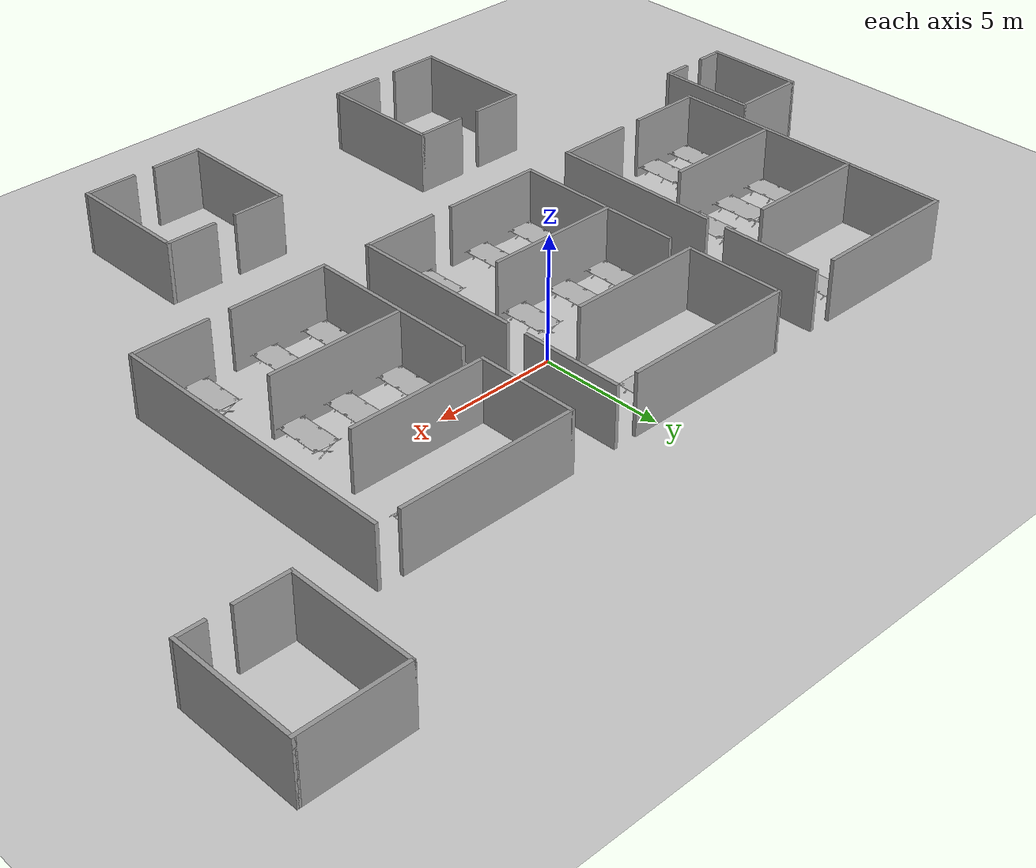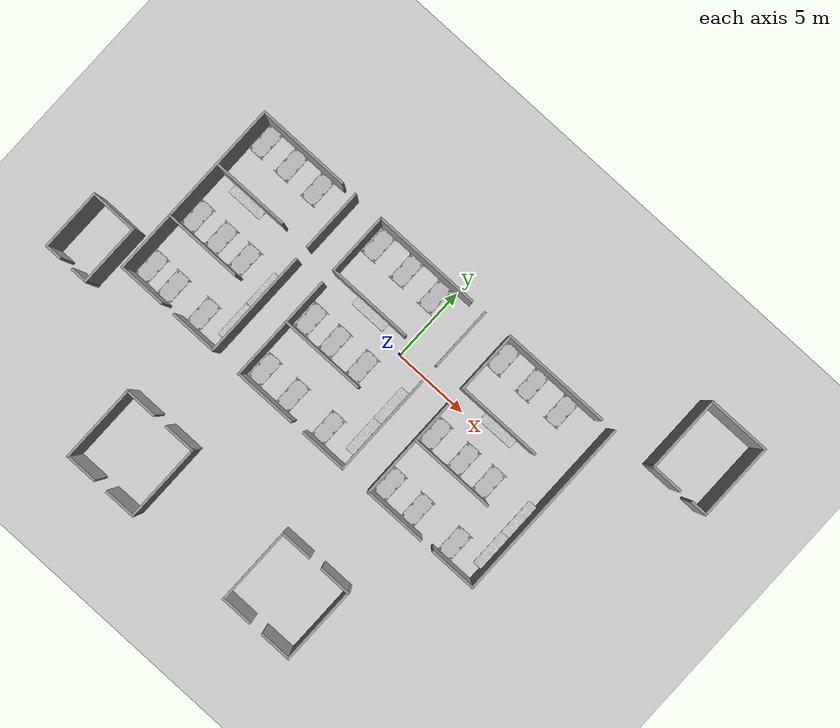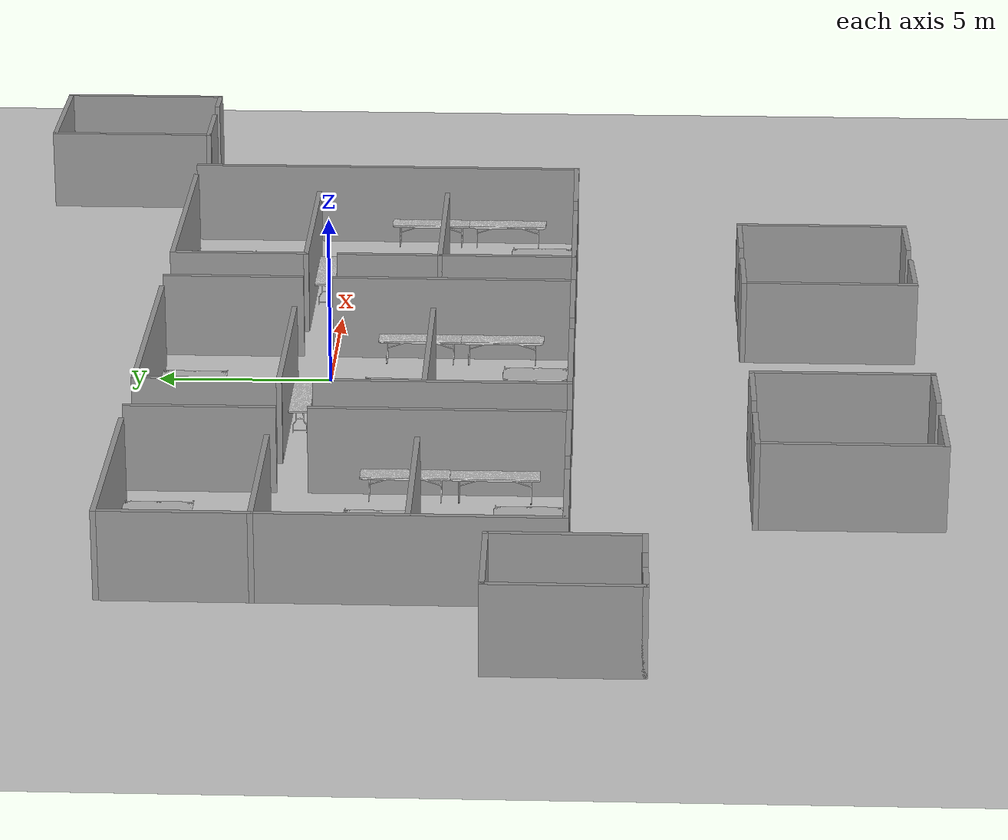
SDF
<sdf version="1.6">
 <world name="default">
  <light name="sun" type="directional">
   <pose>0 0 10 0 -0 0</pose>
   <diffuse>0.8 0.8 0.8 1</diffuse>
   <specular>0.1 0.1 0.1 1</specular>
   <attenuation>
    <range>1000</range>
    <constant>0.9</constant>
    <linear>0.01</linear>
    <quadratic>0.001</quadratic>
   </attenuation>
   <direction>-0.5 0.5 -1</direction>
  </light>
  <model name="ground_plane">
   <static>1</static>
   <link name="link">
    <collision name="collision">
     <geometry><plane><normal>0 0 1</normal><size>100 100</size></plane></geometry>
     <surface><friction><ode><mu>100</mu><mu2>50</mu2></ode></friction></surface>
    </collision>
    <visual name="visual">
     <cast_shadows>0</cast_shadows>
     <geometry><plane><normal>0 0 1</normal><size>100 100</size></plane></geometry>
     <material>
      <script><uri>file://media/materials/scripts/gazebo.material</uri><name>Gazebo/Grey</name></script>
     </material>
    </visual>
   </link>
  </model>
  <gravity>0 0 -9.8</gravity>
  <magnetic_field>6e-06 2.3e-05 -4.2e-05</magnetic_field>
  <atmosphere type="adiabatic"/>
  <physics name="default_physics" default="0" type="ode">
   <max_step_size>0.001</max_step_size>
   <real_time_factor>1</real_time_factor>
   <real_time_update_rate>1000</real_time_update_rate>
  </physics>
  <scene><ambient>0.4 0.4 0.4 1</ambient><background>0.7 0.7 0.7 1</background><shadows>1</shadows></scene>
  <spherical_coordinates>
   <surface_model>EARTH_WGS84</surface_model>
   <latitude_deg>0</latitude_deg>
   <longitude_deg>0</longitude_deg>
   <elevation>0</elevation>
   <heading_deg>0</heading_deg>
  </spherical_coordinates>
  <model name="cot">
   <pose>-14.9811 5.50055 0.1 0 0 -1.5708</pose>
   <static>1</static>
   <link name="body">
    <collision name="body">
     <geometry><mesh><uri>model://cot/meshes/cot.stl</uri><scale>1 1 1</scale></mesh></geometry>
    </collision>
    <visual name="visual">
     <geometry><mesh><uri>model://cot/meshes/cot.dae</uri><scale>1 1 1</scale></mesh></geometry>
    </visual>
   </link>
  </model>
  <model name="cot_clone">
   <pose>-12.9527 5.49728 0.1 0 0 -1.5708</pose>
   <static>1</static>
   <link name="body">
    <collision name="body">
     <geometry><mesh><uri>model://cot/meshes/cot.stl</uri><scale>1 1 1</scale></mesh></geometry>
    </collision>
    <visual name="visual">
     <geometry><mesh><uri>model://cot/meshes/cot.dae</uri><scale>1 1 1</scale></mesh></geometry>
    </visual>
   </link>
  </model>
  <model name="cot_clone_0">
   <pose>-10.8332 5.4804 0.1 0 0 -1.5708</pose>
   <static>1</static>
   <link name="body">
    <collision name="body">
     <geometry><mesh><uri>model://cot/meshes/cot.stl</uri><scale>1 1 1</scale></mesh></geometry>
    </collision>
    <visual name="visual">
     <geometry><mesh><uri>model://cot/meshes/cot.dae</uri><scale>1 1 1</scale></mesh></geometry>
    </visual>
   </link>
  </model>
  <model name="cot_clone_1">
   <pose>-14.9768 -0.452277 0.1 0 0 -1.5708</pose>
   <static>1</static>
   <link name="body">
    <collision name="body">
     <geometry><mesh><uri>model://cot/meshes/cot.stl</uri><scale>1 1 1</scale></mesh></geometry>
    </collision>
    <visual name="visual">
     <geometry><mesh><uri>model://cot/meshes/cot.dae</uri><scale>1 1 1</scale></mesh></geometry>
    </visual>
   </link>
  </model>
  <model name="cot_clone_2">
   <pose>-13.08 -0.439645 0.1 0 0 -1.5708</pose>
   <static>1</static>
   <link name="body">
    <collision name="body">
     <geometry><mesh><uri>model://cot/meshes/cot.stl</uri><scale>1 1 1</scale></mesh></geometry>
    </collision>
    <visual name="visual">
     <geometry><mesh><uri>model://cot/meshes/cot.dae</uri><scale>1 1 1</scale></mesh></geometry>
    </visual>
   </link>
  </model>
  <model name="cot_clone_3">
   <pose>-11.1982 -0.445731 0.1 0 0 -1.5708</pose>
   <static>1</static>
   <link name="body">
    <collision name="body">
     <geometry><mesh><uri>model://cot/meshes/cot.stl</uri><scale>1 1 1</scale></mesh></geometry>
    </collision>
    <visual name="visual">
     <geometry><mesh><uri>model://cot/meshes/cot.dae</uri><scale>1 1 1</scale></mesh></geometry>
    </visual>
   </link>
  </model>
  <model name="cot_clone_4">
   <pose>-14.973 -4.43674 0.1 0 0 -1.5708</pose>
   <static>1</static>
   <link name="body">
    <collision name="body">
     <geometry><mesh><uri>model://cot/meshes/cot.stl</uri><scale>1 1 1</scale></mesh></geometry>
    </collision>
    <visual name="visual">
     <geometry><mesh><uri>model://cot/meshes/cot.dae</uri><scale>1 1 1</scale></mesh></geometry>
    </visual>
   </link>
  </model>
  <model name="cot_clone_5">
   <pose>-13.2224 -4.46277 0.1 0 0 -1.5708</pose>
   <static>1</static>
   <link name="body">
    <collision name="body">
     <geometry><mesh><uri>model://cot/meshes/cot.stl</uri><scale>1 1 1</scale></mesh></geometry>
    </collision>
    <visual name="visual">
     <geometry><mesh><uri>model://cot/meshes/cot.dae</uri><scale>1 1 1</scale></mesh></geometry>
    </visual>
   </link>
  </model>
  <model name="cot_clone_6">
   <pose>-10.8255 -4.45374 0.1 0 0 -1.5708</pose>
   <static>1</static>
   <link name="body">
    <collision name="body">
     <geometry><mesh><uri>model://cot/meshes/cot.stl</uri><scale>1 1 1</scale></mesh></geometry>
    </collision>
    <visual name="visual">
     <geometry><mesh><uri>model://cot/meshes/cot.dae</uri><scale>1 1 1</scale></mesh></geometry>
    </visual>
   </link>
  </model>
  <model name="cot_clone_7">
   <pose>-5.95946 5.46312 0.1 0 0 -1.5708</pose>
   <static>1</static>
   <link name="body">
    <collision name="body">
     <geometry><mesh><uri>model://cot/meshes/cot.stl</uri><scale>1 1 1</scale></mesh></geometry>
    </collision>
    <visual name="visual">
     <geometry><mesh><uri>model://cot/meshes/cot.dae</uri><scale>1 1 1</scale></mesh></geometry>
    </visual>
   </link>
  </model>
  <model name="cot_clone_8">
   <pose>-3.7045 5.46598 0.1 0 0 -1.5708</pose>
   <static>1</static>
   <link name="body">
    <collision name="body">
     <geometry><mesh><uri>model://cot/meshes/cot.stl</uri><scale>1 1 1</scale></mesh></geometry>
    </collision>
    <visual name="visual">
     <geometry><mesh><uri>model://cot/meshes/cot.dae</uri><scale>1 1 1</scale></mesh></geometry>
    </visual>
   </link>
  </model>
  <model name="cot_clone_9">
   <pose>-1.45201 5.44819 0.1 0 0 -1.5708</pose>
   <static>1</static>
   <link name="body">
    <collision name="body">
     <geometry><mesh><uri>model://cot/meshes/cot.stl</uri><scale>1 1 1</scale></mesh></geometry>
    </collision>
    <visual name="visual">
     <geometry><mesh><uri>model://cot/meshes/cot.dae</uri><scale>1 1 1</scale></mesh></geometry>
    </visual>
   </link>
  </model>
  <model name="cot_clone_10">
   <pose>-5.9537 -0.41929 0.1 0 0 -1.5708</pose>
   <static>1</static>
   <link name="body">
    <collision name="body">
     <geometry><mesh><uri>model://cot/meshes/cot.stl</uri><scale>1 1 1</scale></mesh></geometry>
    </collision>
    <visual name="visual">
     <geometry><mesh><uri>model://cot/meshes/cot.dae</uri><scale>1 1 1</scale></mesh></geometry>
    </visual>
   </link>
  </model>
  <model name="cot_clone_11">
   <pose>-4.01982 -0.428355 0.1 0 0 -1.5708</pose>
   <static>1</static>
   <link name="body">
    <collision name="body">
     <geometry><mesh><uri>model://cot/meshes/cot.stl</uri><scale>1 1 1</scale></mesh></geometry>
    </collision>
    <visual name="visual">
     <geometry><mesh><uri>model://cot/meshes/cot.dae</uri><scale>1 1 1</scale></mesh></geometry>
    </visual>
   </link>
  </model>
  <model name="cot_clone_12">
   <pose>-1.82184 -0.443345 0.1 0 0 -1.5708</pose>
   <static>1</static>
   <link name="body">
    <collision name="body">
     <geometry><mesh><uri>model://cot/meshes/cot.stl</uri><scale>1 1 1</scale></mesh></geometry>
    </collision>
    <visual name="visual">
     <geometry><mesh><uri>model://cot/meshes/cot.dae</uri><scale>1 1 1</scale></mesh></geometry>
    </visual>
   </link>
  </model>
  <model name="cot_clone_13">
   <pose>-5.95607 -4.4286 0.1 0 0 -1.5708</pose>
   <static>1</static>
   <link name="body">
    <collision name="body">
     <geometry><mesh><uri>model://cot/meshes/cot.stl</uri><scale>1 1 1</scale></mesh></geometry>
    </collision>
    <visual name="visual">
     <geometry><mesh><uri>model://cot/meshes/cot.dae</uri><scale>1 1 1</scale></mesh></geometry>
    </visual>
   </link>
  </model>
  <model name="cot_clone_14">
   <pose>-3.72043 -4.44398 0.1 0 0 -1.5708</pose>
   <static>1</static>
   <link name="body">
    <collision name="body">
     <geometry><mesh><uri>model://cot/meshes/cot.stl</uri><scale>1 1 1</scale></mesh></geometry>
    </collision>
    <visual name="visual">
     <geometry><mesh><uri>model://cot/meshes/cot.dae</uri><scale>1 1 1</scale></mesh></geometry>
    </visual>
   </link>
  </model>
  <model name="cot_clone_15">
   <pose>-0.888675 -4.42918 0.1 0 0 -1.5708</pose>
   <static>1</static>
   <link name="body">
    <collision name="body">
     <geometry><mesh><uri>model://cot/meshes/cot.stl</uri><scale>1 1 1</scale></mesh></geometry>
    </collision>
    <visual name="visual">
     <geometry><mesh><uri>model://cot/meshes/cot.dae</uri><scale>1 1 1</scale></mesh></geometry>
    </visual>
   </link>
  </model>
  <model name="cot_clone_16">
   <pose>4.0211 5.47722 0.1 0 0 -1.5708</pose>
   <static>1</static>
   <link name="body">
    <collision name="body">
     <geometry><mesh><uri>model://cot/meshes/cot.stl</uri><scale>1 1 1</scale></mesh></geometry>
    </collision>
    <visual name="visual">
     <geometry><mesh><uri>model://cot/meshes/cot.dae</uri><scale>1 1 1</scale></mesh></geometry>
    </visual>
   </link>
  </model>
  <model name="cot_clone_17">
   <pose>6.27241 5.48294 0.1 0 0 -1.5708</pose>
   <static>1</static>
   <link name="body">
    <collision name="body">
     <geometry><mesh><uri>model://cot/meshes/cot.stl</uri><scale>1 1 1</scale></mesh></geometry>
    </collision>
    <visual name="visual">
     <geometry><mesh><uri>model://cot/meshes/cot.dae</uri><scale>1 1 1</scale></mesh></geometry>
    </visual>
   </link>
  </model>
  <model name="cot_clone_18">
   <pose>8.58441 5.49005 0.1 0 0 -1.5708</pose>
   <static>1</static>
   <link name="body">
    <collision name="body">
     <geometry><mesh><uri>model://cot/meshes/cot.stl</uri><scale>1 1 1</scale></mesh></geometry>
    </collision>
    <visual name="visual">
     <geometry><mesh><uri>model://cot/meshes/cot.dae</uri><scale>1 1 1</scale></mesh></geometry>
    </visual>
   </link>
  </model>
  <model name="cot_clone_19">
   <pose>4.02772 -0.451978 0.1 0 0 -1.5708</pose>
   <static>1</static>
   <link name="body">
    <collision name="body">
     <geometry><mesh><uri>model://cot/meshes/cot.stl</uri><scale>1 1 1</scale></mesh></geometry>
    </collision>
    <visual name="visual">
     <geometry><mesh><uri>model://cot/meshes/cot.dae</uri><scale>1 1 1</scale></mesh></geometry>
    </visual>
   </link>
  </model>
  <model name="cot_clone_20">
   <pose>6.26482 -0.44706 0.1 0 0 -1.5708</pose>
   <static>1</static>
   <link name="body">
    <collision name="body">
     <geometry><mesh><uri>model://cot/meshes/cot.stl</uri><scale>1 1 1</scale></mesh></geometry>
    </collision>
    <visual name="visual">
     <geometry><mesh><uri>model://cot/meshes/cot.dae</uri><scale>1 1 1</scale></mesh></geometry>
    </visual>
   </link>
  </model>
  <model name="cot_clone_21">
   <pose>8.24769 -0.446592 0.1 0 0 -1.5708</pose>
   <static>1</static>
   <link name="body">
    <collision name="body">
     <geometry><mesh><uri>model://cot/meshes/cot.stl</uri><scale>1 1 1</scale></mesh></geometry>
    </collision>
    <visual name="visual">
     <geometry><mesh><uri>model://cot/meshes/cot.dae</uri><scale>1 1 1</scale></mesh></geometry>
    </visual>
   </link>
  </model>
  <model name="cot_clone_22">
   <pose>4.03249 -4.42697 0.1 0 0 -1.5708</pose>
   <static>1</static>
   <link name="body">
    <collision name="body">
     <geometry><mesh><uri>model://cot/meshes/cot.stl</uri><scale>1 1 1</scale></mesh></geometry>
    </collision>
    <visual name="visual">
     <geometry><mesh><uri>model://cot/meshes/cot.dae</uri><scale>1 1 1</scale></mesh></geometry>
    </visual>
   </link>
  </model>
  <model name="cot_clone_23">
   <pose>6.23645 -4.44769 0.1 0 0 -1.5708</pose>
   <static>1</static>
   <link name="body">
    <collision name="body">
     <geometry><mesh><uri>model://cot/meshes/cot.stl</uri><scale>1 1 1</scale></mesh></geometry>
    </collision>
    <visual name="visual">
     <geometry><mesh><uri>model://cot/meshes/cot.dae</uri><scale>1 1 1</scale></mesh></geometry>
    </visual>
   </link>
  </model>
  <model name="cot_clone_24">
   <pose>9.17787 -4.4333 0.1 0 0 -1.5708</pose>
   <static>1</static>
   <link name="body">
    <collision name="body">
     <geometry><mesh><uri>model://cot/meshes/cot.stl</uri><scale>1 1 1</scale></mesh></geometry>
    </collision>
    <visual name="visual">
     <geometry><mesh><uri>model://cot/meshes/cot.dae</uri><scale>1 1 1</scale></mesh></geometry>
    </visual>
   </link>
  </model>
  <model name="table_0">
   <pose>-13.8809 0.301038 0 0 -0 0</pose>
   <static>1</static>
   <link name="body">
    <collision name="body">
     <geometry><mesh><uri>model://table/meshes/table.stl</uri><scale>1 1 1</scale></mesh></geometry>
    </collision>
    <visual name="visual">
     <geometry><mesh><uri>model://table/meshes/table.dae</uri><scale>1 1 1</scale></mesh></geometry>
    </visual>
   </link>
  </model>
  <model name="table_0_clone">
   <pose>-4.12342 0.312356 0 0 -0 0</pose>
   <static>1</static>
   <link name="body">
    <collision name="body">
     <geometry><mesh><uri>model://table/meshes/table.stl</uri><scale>1 1 1</scale></mesh></geometry>
    </collision>
    <visual name="visual">
     <geometry><mesh><uri>model://table/meshes/table.dae</uri><scale>1 1 1</scale></mesh></geometry>
    </visual>
   </link>
  </model>
  <model name="table_0_clone_0">
   <pose>5.99211 0.305301 0 0 -0 0</pose>
   <static>1</static>
   <link name="body">
    <collision name="body">
     <geometry><mesh><uri>model://table/meshes/table.stl</uri><scale>1 1 1</scale></mesh></geometry>
    </collision>
    <visual name="visual">
     <geometry><mesh><uri>model://table/meshes/table.dae</uri><scale>1 1 1</scale></mesh></geometry>
    </visual>
   </link>
  </model>
  <model name="table_1">
   <pose>-8.72463 -3.81029 0 0 0 -1.5708</pose>
   <static>1</static>
   <link name="body">
    <collision name="body">
     <geometry><mesh><uri>model://table/meshes/table.stl</uri><scale>1 1 1</scale></mesh></geometry>
    </collision>
    <visual name="visual">
     <geometry><mesh><uri>model://table/meshes/table.dae</uri><scale>1 1 1</scale></mesh></geometry>
    </visual>
   </link>
  </model>
  <model name="table_1_clone">
   <pose>-8.71425 -1.37003 0 0 0 -1.5708</pose>
   <static>1</static>
   <link name="body">
    <collision name="body">
     <geometry><mesh><uri>model://table/meshes/table.stl</uri><scale>1 1 1</scale></mesh></geometry>
    </collision>
    <visual name="visual">
     <geometry><mesh><uri>model://table/meshes/table.dae</uri><scale>1 1 1</scale></mesh></geometry>
    </visual>
   </link>
  </model>
  <model name="table_1_clone_0">
   <pose>1.31419 -3.71854 0 0 0 -1.5708</pose>
   <static>1</static>
   <link name="body">
    <collision name="body">
     <geometry><mesh><uri>model://table/meshes/table.stl</uri><scale>1 1 1</scale></mesh></geometry>
    </collision>
    <visual name="visual">
     <geometry><mesh><uri>model://table/meshes/table.dae</uri><scale>1 1 1</scale></mesh></geometry>
    </visual>
   </link>
  </model>
  <model name="table_1_clone_1">
   <pose>1.31747 -1.3018 0 0 0 -1.5708</pose>
   <static>1</static>
   <link name="body">
    <collision name="body">
     <geometry><mesh><uri>model://table/meshes/table.stl</uri><scale>1 1 1</scale></mesh></geometry>
    </collision>
    <visual name="visual">
     <geometry><mesh><uri>model://table/meshes/table.dae</uri><scale>1 1 1</scale></mesh></geometry>
    </visual>
   </link>
  </model>
  <model name="table_1_clone_2">
   <pose>11.3236 -3.6078 0 0 0 -1.5708</pose>
   <static>1</static>
   <link name="body">
    <collision name="body">
     <geometry><mesh><uri>model://table/meshes/table.stl</uri><scale>1 1 1</scale></mesh></geometry>
    </collision>
    <visual name="visual">
     <geometry><mesh><uri>model://table/meshes/table.dae</uri><scale>1 1 1</scale></mesh></geometry>
    </visual>
   </link>
  </model>
  <model name="table_1_clone_3">
   <pose>11.3257 -1.17916 0 0 0 -1.5708</pose>
   <static>1</static>
   <link name="body">
    <collision name="body">
     <geometry><mesh><uri>model://table/meshes/table.stl</uri><scale>1 1 1</scale></mesh></geometry>
    </collision>
    <visual name="visual">
     <geometry><mesh><uri>model://table/meshes/table.dae</uri><scale>1 1 1</scale></mesh></geometry>
    </visual>
   </link>
  </model>
  <model name="tents_0">
   <pose>0 -3.5 0 0 -0 0</pose>
   <link name="Wall_10">
    <collision name="Wall_10_Collision">
     <geometry><box><size>2.15 0.15 2.5</size></box></geometry>
     <pose>0 0 1.25 0 -0 0</pose>
    </collision>
    <visual name="Wall_10_Visual">
     <pose>0 0 1.25 0 -0 0</pose>
     <geometry><box><size>2.15 0.15 2.5</size></box></geometry>
     <material>
      <script><uri>file://media/materials/scripts/gazebo.material</uri><name>Gazebo/Grey</name></script>
      <ambient>1 1 1 1</ambient>
     </material>
    </visual>
    <pose>-9 -8.5 0 0 -0 3.14159</pose>
   </link>
   <link name="Wall_11">
    <collision name="Wall_11_Collision">
     <geometry><box><size>5.15 0.15 2.5</size></box></geometry>
     <pose>0 0 1.25 0 -0 0</pose>
    </collision>
    <visual name="Wall_11_Visual">
     <pose>0 0 1.25 0 -0 0</pose>
     <geometry><box><size>5.15 0.15 2.5</size></box></geometry>
     <material>
      <script><uri>file://media/materials/scripts/gazebo.material</uri><name>Gazebo/Grey</name></script>
      <ambient>1 1 1 1</ambient>
     </material>
    </visual>
    <pose>-10 -11 0 0 0 -1.5708</pose>
   </link>
   <link name="Wall_12">
    <collision name="Wall_12_Collision">
     <geometry><box><size>2.15 0.15 2.5</size></box></geometry>
     <pose>0 0 1.25 0 -0 0</pose>
    </collision>
    <visual name="Wall_12_Visual">
     <pose>0 0 1.25 0 -0 0</pose>
     <geometry><box><size>2.15 0.15 2.5</size></box></geometry>
     <material>
      <script><uri>file://media/materials/scripts/gazebo.material</uri><name>Gazebo/Grey</name></script>
      <ambient>1 1 1 1</ambient>
     </material>
    </visual>
    <pose>-9 -13.5 0 0 -0 0</pose>
   </link>
   <link name="Wall_14">
    <collision name="Wall_14_Collision">
     <geometry><box><size>2.15 0.15 2.5</size></box></geometry>
     <pose>0 0 1.25 0 -0 0</pose>
    </collision>
    <visual name="Wall_14_Visual">
     <pose>0 0 1.25 0 -0 0</pose>
     <geometry><box><size>2.15 0.15 2.5</size></box></geometry>
     <material>
      <script><uri>file://media/materials/scripts/gazebo.material</uri><name>Gazebo/Grey</name></script>
      <ambient>1 1 1 1</ambient>
     </material>
    </visual>
    <pose>-6 -8.5 0 0 -0 0</pose>
   </link>
   <link name="Wall_15">
    <collision name="Wall_15_Collision">
     <geometry><box><size>5.15 0.15 2.5</size></box></geometry>
     <pose>0 0 1.25 0 -0 0</pose>
    </collision>
    <visual name="Wall_15_Visual">
     <pose>0 0 1.25 0 -0 0</pose>
     <geometry><box><size>5.15 0.15 2.5</size></box></geometry>
     <material>
      <script><uri>file://media/materials/scripts/gazebo.material</uri><name>Gazebo/Grey</name></script>
      <ambient>1 1 1 1</ambient>
     </material>
    </visual>
    <pose>-5 -11 0 0 0 -1.5708</pose>
   </link>
   <link name="Wall_16">
    <collision name="Wall_16_Collision">
     <geometry><box><size>2.15 0.15 2.5</size></box></geometry>
     <pose>0 0 1.25 0 -0 0</pose>
    </collision>
    <visual name="Wall_16_Visual">
     <pose>0 0 1.25 0 -0 0</pose>
     <geometry><box><size>2.15 0.15 2.5</size></box></geometry>
     <material>
      <script><uri>file://media/materials/scripts/gazebo.material</uri><name>Gazebo/Grey</name></script>
      <ambient>1 1 1 1</ambient>
     </material>
    </visual>
    <pose>-6 -13.5 0 0 -0 3.14159</pose>
   </link>
   <link name="Wall_2">
    <collision name="Wall_2_Collision">
     <geometry><box><size>2.15 0.15 2.5</size></box></geometry>
     <pose>0 0 1.25 0 -0 0</pose>
    </collision>
    <visual name="Wall_2_Visual">
     <pose>0 0 1.25 0 -0 0</pose>
     <geometry><box><size>2.15 0.15 2.5</size></box></geometry>
     <material>
      <script><uri>file://media/materials/scripts/gazebo.material</uri><name>Gazebo/Grey</name></script>
      <ambient>1 1 1 1</ambient>
     </material>
    </visual>
    <pose>16 8.5 0 0 -0 3.14159</pose>
   </link>
   <link name="Wall_20">
    <collision name="Wall_20_Collision">
     <geometry><box><size>2.15 0.15 2.5</size></box></geometry>
     <pose>0 0 1.25 0 -0 0</pose>
    </collision>
    <visual name="Wall_20_Visual">
     <pose>0 0 1.25 0 -0 0</pose>
     <geometry><box><size>2.15 0.15 2.5</size></box></geometry>
     <material>
      <script><uri>file://media/materials/scripts/gazebo.material</uri><name>Gazebo/Grey</name></script>
      <ambient>1 1 1 1</ambient>
     </material>
    </visual>
    <pose>3 -8.5 0 0 -0 3.14159</pose>
   </link>
   <link name="Wall_21">
    <collision name="Wall_21_Collision">
     <geometry><box><size>5.15 0.15 2.5</size></box></geometry>
     <pose>0 0 1.25 0 -0 0</pose>
    </collision>
    <visual name="Wall_21_Visual">
     <pose>0 0 1.25 0 -0 0</pose>
     <geometry><box><size>5.15 0.15 2.5</size></box></geometry>
     <material>
      <script><uri>file://media/materials/scripts/gazebo.material</uri><name>Gazebo/Grey</name></script>
      <ambient>1 1 1 1</ambient>
     </material>
    </visual>
    <pose>2 -11 0 0 0 -1.5708</pose>
   </link>
   <link name="Wall_22">
    <collision name="Wall_22_Collision">
     <geometry><box><size>2.15 0.15 2.5</size></box></geometry>
     <pose>0 0 1.25 0 -0 0</pose>
    </collision>
    <visual name="Wall_22_Visual">
     <pose>0 0 1.25 0 -0 0</pose>
     <geometry><box><size>2.15 0.15 2.5</size></box></geometry>
     <material>
      <script><uri>file://media/materials/scripts/gazebo.material</uri><name>Gazebo/Grey</name></script>
      <ambient>1 1 1 1</ambient>
     </material>
    </visual>
    <pose>3 -13.5 0 0 -0 0</pose>
   </link>
   <link name="Wall_24">
    <collision name="Wall_24_Collision">
     <geometry><box><size>2.15 0.15 2.5</size></box></geometry>
     <pose>0 0 1.25 0 -0 0</pose>
    </collision>
    <visual name="Wall_24_Visual">
     <pose>0 0 1.25 0 -0 0</pose>
     <geometry><box><size>2.15 0.15 2.5</size></box></geometry>
     <material>
      <script><uri>file://media/materials/scripts/gazebo.material</uri><name>Gazebo/Grey</name></script>
      <ambient>1 1 1 1</ambient>
     </material>
    </visual>
    <pose>6 -8.5 0 0 -0 0</pose>
   </link>
   <link name="Wall_25">
    <collision name="Wall_25_Collision">
     <geometry><box><size>5.15 0.15 2.5</size></box></geometry>
     <pose>0 0 1.25 0 -0 0</pose>
    </collision>
    <visual name="Wall_25_Visual">
     <pose>0 0 1.25 0 -0 0</pose>
     <geometry><box><size>5.15 0.15 2.5</size></box></geometry>
     <material>
      <script><uri>file://media/materials/scripts/gazebo.material</uri><name>Gazebo/Grey</name></script>
      <ambient>1 1 1 1</ambient>
     </material>
    </visual>
    <pose>7 -11 0 0 0 -1.5708</pose>
   </link>
   <link name="Wall_26">
    <collision name="Wall_26_Collision">
     <geometry><box><size>2.15 0.15 2.5</size></box></geometry>
     <pose>0 0 1.25 0 -0 0</pose>
    </collision>
    <visual name="Wall_26_Visual">
     <pose>0 0 1.25 0 -0 0</pose>
     <geometry><box><size>2.15 0.15 2.5</size></box></geometry>
     <material>
      <script><uri>file://media/materials/scripts/gazebo.material</uri><name>Gazebo/Grey</name></script>
      <ambient>1 1 1 1</ambient>
     </material>
    </visual>
    <pose>6 -13.5 0 0 -0 3.14159</pose>
   </link>
   <link name="Wall_3">
    <collision name="Wall_3_Collision">
     <geometry><box><size>5.15 0.15 2.5</size></box></geometry>
     <pose>0 0 1.25 0 -0 0</pose>
    </collision>
    <visual name="Wall_3_Visual">
     <pose>0 0 1.25 0 -0 0</pose>
     <geometry><box><size>5.15 0.15 2.5</size></box></geometry>
     <material>
      <script><uri>file://media/materials/scripts/gazebo.material</uri><name>Gazebo/Grey</name></script>
      <ambient>1 1 1 1</ambient>
     </material>
    </visual>
    <pose>15 11 0 0 -0 1.5708</pose>
   </link>
   <link name="Wall_33">
    <collision name="Wall_33_Collision">
     <geometry><box><size>1.15 0.15 2.5</size></box></geometry>
     <pose>0 0 1.25 0 -0 0</pose>
    </collision>
    <visual name="Wall_33_Visual">
     <pose>0 0 1.25 0 -0 0</pose>
     <geometry><box><size>1.15 0.15 2.5</size></box></geometry>
     <material>
      <script><uri>file://media/materials/scripts/gazebo.material</uri><name>Gazebo/Grey</name></script>
      <ambient>1 1 1 1</ambient>
     </material>
    </visual>
    <pose>-18.5 -5.5 0 0 -0 3.14159</pose>
   </link>
   <link name="Wall_34">
    <collision name="Wall_34_Collision">
     <geometry><box><size>4.15 0.15 2.5</size></box></geometry>
     <pose>0 0 1.25 0 -0 0</pose>
    </collision>
    <visual name="Wall_34_Visual">
     <pose>0 0 1.25 0 -0 0</pose>
     <geometry><box><size>4.15 0.15 2.5</size></box></geometry>
     <material>
      <script><uri>file://media/materials/scripts/gazebo.material</uri><name>Gazebo/Grey</name></script>
      <ambient>1 1 1 1</ambient>
     </material>
    </visual>
    <pose>-19 -3.5 0 0 -0 1.5708</pose>
   </link>
   <link name="Wall_35">
    <collision name="Wall_35_Collision">
     <geometry><box><size>3.15 0.15 2.5</size></box></geometry>
     <pose>0 0 1.25 0 -0 0</pose>
    </collision>
    <visual name="Wall_35_Visual">
     <pose>0 0 1.25 0 -0 0</pose>
     <geometry><box><size>3.15 0.15 2.5</size></box></geometry>
     <material>
      <script><uri>file://media/materials/scripts/gazebo.material</uri><name>Gazebo/Grey</name></script>
      <ambient>1 1 1 1</ambient>
     </material>
    </visual>
    <pose>-17.5 -1.5 0 0 -0 0</pose>
   </link>
   <link name="Wall_36">
    <collision name="Wall_36_Collision">
     <geometry><box><size>4.15 0.15 2.5</size></box></geometry>
     <pose>0 0 1.25 0 -0 0</pose>
    </collision>
    <visual name="Wall_36_Visual">
     <pose>0 0 1.25 0 -0 0</pose>
     <geometry><box><size>4.15 0.15 2.5</size></box></geometry>
     <material>
      <script><uri>file://media/materials/scripts/gazebo.material</uri><name>Gazebo/Grey</name></script>
      <ambient>1 1 1 1</ambient>
     </material>
    </visual>
    <pose>-16 -3.5 0 0 0 -1.5708</pose>
   </link>
   <link name="Wall_37">
    <collision name="Wall_37_Collision">
     <geometry><box><size>1.15 0.15 2.5</size></box></geometry>
     <pose>0 0 1.25 0 -0 0</pose>
    </collision>
    <visual name="Wall_37_Visual">
     <pose>0 0 1.25 0 -0 0</pose>
     <geometry><box><size>1.15 0.15 2.5</size></box></geometry>
     <material>
      <script><uri>file://media/materials/scripts/gazebo.material</uri><name>Gazebo/Grey</name></script>
      <ambient>1 1 1 1</ambient>
     </material>
    </visual>
    <pose>-16.5 -5.5 0 0 -0 3.14159</pose>
   </link>
   <link name="Wall_4">
    <collision name="Wall_4_Collision">
     <geometry><box><size>4.15 0.15 2.5</size></box></geometry>
     <pose>0 0 1.25 0 -0 0</pose>
    </collision>
    <visual name="Wall_4_Visual">
     <pose>0 0 1.25 0 -0 0</pose>
     <geometry><box><size>4.15 0.15 2.5</size></box></geometry>
     <material>
      <script><uri>file://media/materials/scripts/gazebo.material</uri><name>Gazebo/Grey</name></script>
      <ambient>1 1 1 1</ambient>
     </material>
    </visual>
    <pose>17 13.5 0 0 -0 0</pose>
   </link>
   <link name="Wall_42">
    <collision name="Wall_42_Collision">
     <geometry><box><size>6.15 0.15 2.5</size></box></geometry>
     <pose>0 0 1.25 0 -0 0</pose>
    </collision>
    <visual name="Wall_42_Visual">
     <pose>0 0 1.25 0 -0 0</pose>
     <geometry><box><size>6.15 0.15 2.5</size></box></geometry>
     <material>
      <script><uri>file://media/materials/scripts/gazebo.material</uri><name>Gazebo/Grey</name></script>
      <ambient>1 1 1 1</ambient>
     </material>
    </visual>
    <pose>-12 8.5 0 0 -0 3.14159</pose>
   </link>
   <link name="Wall_43">
    <collision name="Wall_43_Collision">
     <geometry><box><size>12.15 0.15 2.5</size></box></geometry>
     <pose>0 0 1.25 0 -0 0</pose>
    </collision>
    <visual name="Wall_43_Visual">
     <pose>0 0 1.25 0 -0 0</pose>
     <geometry><box><size>12.15 0.15 2.5</size></box></geometry>
     <material>
      <script><uri>file://media/materials/scripts/gazebo.material</uri><name>Gazebo/Grey</name></script>
      <ambient>1 1 1 1</ambient>
     </material>
    </visual>
    <pose>-15 2.5 0 0 0 -1.5708</pose>
   </link>
   <link name="Wall_44">
    <collision name="Wall_44_Collision">
     <geometry><box><size>3.15 0.15 2.5</size></box></geometry>
     <pose>0 0 1.25 0 -0 0</pose>
    </collision>
    <visual name="Wall_44_Visual">
     <pose>0 0 1.25 0 -0 0</pose>
     <geometry><box><size>3.15 0.15 2.5</size></box></geometry>
     <material>
      <script><uri>file://media/materials/scripts/gazebo.material</uri><name>Gazebo/Grey</name></script>
      <ambient>1 1 1 1</ambient>
     </material>
    </visual>
    <pose>-13.5 -3.5 0 0 -0 0</pose>
   </link>
   <link name="Wall_46">
    <collision name="Wall_46_Collision">
     <geometry><box><size>3.15 0.15 2.5</size></box></geometry>
     <pose>0 0 1.25 0 -0 0</pose>
    </collision>
    <visual name="Wall_46_Visual">
     <pose>0 0 1.25 0 -0 0</pose>
     <geometry><box><size>3.15 0.15 2.5</size></box></geometry>
     <material>
      <script><uri>file://media/materials/scripts/gazebo.material</uri><name>Gazebo/Grey</name></script>
      <ambient>1 1 1 1</ambient>
     </material>
    </visual>
    <pose>-9.5 -3.5 0 0 -0 0</pose>
   </link>
   <link name="Wall_47">
    <collision name="Wall_47_Collision">
     <geometry><box><size>7.15 0.15 2.5</size></box></geometry>
     <pose>0 0 1.25 0 -0 0</pose>
    </collision>
    <visual name="Wall_47_Visual">
     <pose>0 0 1.25 0 -0 0</pose>
     <geometry><box><size>7.15 0.15 2.5</size></box></geometry>
     <material>
      <script><uri>file://media/materials/scripts/gazebo.material</uri><name>Gazebo/Grey</name></script>
      <ambient>1 1 1 1</ambient>
     </material>
    </visual>
    <pose>-8 0 0 0 -0 1.5708</pose>
   </link>
   <link name="Wall_49">
    <collision name="Wall_49_Collision">
     <geometry><box><size>4.15 0.15 2.5</size></box></geometry>
     <pose>0 0 1.25 0 -0 0</pose>
    </collision>
    <visual name="Wall_49_Visual">
     <pose>0 0 1.25 0 -0 0</pose>
     <geometry><box><size>4.15 0.15 2.5</size></box></geometry>
     <material>
      <script><uri>file://media/materials/scripts/gazebo.material</uri><name>Gazebo/Grey</name></script>
      <ambient>1 1 1 1</ambient>
     </material>
    </visual>
    <pose>-8 6.5 0 0 0 -1.5708</pose>
   </link>
   <link name="Wall_5">
    <collision name="Wall_5_Collision">
     <geometry><box><size>5.15 0.15 2.5</size></box></geometry>
     <pose>0 0 1.25 0 -0 0</pose>
    </collision>
    <visual name="Wall_5_Visual">
     <pose>0 0 1.25 0 -0 0</pose>
     <geometry><box><size>5.15 0.15 2.5</size></box></geometry>
     <material>
      <script><uri>file://media/materials/scripts/gazebo.material</uri><name>Gazebo/Grey</name></script>
      <ambient>1 1 1 1</ambient>
     </material>
    </visual>
    <pose>19 11 0 0 0 -1.5708</pose>
   </link>
   <link name="Wall_51">
    <collision name="Wall_51_Collision">
     <geometry><box><size>5.15 0.15 2.5</size></box></geometry>
     <pose>0 0 1.25 0 -0 0</pose>
    </collision>
    <visual name="Wall_51_Visual">
     <pose>0 0 1.25 0 -0 0</pose>
     <geometry><box><size>5.15 0.15 2.5</size></box></geometry>
     <material>
      <script><uri>file://media/materials/scripts/gazebo.material</uri><name>Gazebo/Grey</name></script>
      <ambient>1 1 1 1</ambient>
     </material>
    </visual>
    <pose>-12.5 4.5 0 0 -0 0</pose>
   </link>
   <link name="Wall_53">
    <collision name="Wall_53_Collision">
     <geometry><box><size>5.15 0.15 2.5</size></box></geometry>
     <pose>0 0 1.25 0 -0 0</pose>
    </collision>
    <visual name="Wall_53_Visual">
     <pose>0 0 1.25 0 -0 0</pose>
     <geometry><box><size>5.15 0.15 2.5</size></box></geometry>
     <material>
      <script><uri>file://media/materials/scripts/gazebo.material</uri><name>Gazebo/Grey</name></script>
      <ambient>1 1 1 1</ambient>
     </material>
    </visual>
    <pose>-12.5 0.5 0 0 -0 0</pose>
   </link>
   <link name="Wall_6">
    <collision name="Wall_6_Collision">
     <geometry><box><size>1.15 0.15 2.5</size></box></geometry>
     <pose>0 0 1.25 0 -0 0</pose>
    </collision>
    <visual name="Wall_6_Visual">
     <pose>0 0 1.25 0 -0 0</pose>
     <geometry><box><size>1.15 0.15 2.5</size></box></geometry>
     <material>
      <script><uri>file://media/materials/scripts/gazebo.material</uri><name>Gazebo/Grey</name></script>
      <ambient>1 1 1 1</ambient>
     </material>
    </visual>
    <pose>18.5 8.5 0 0 -0 3.14159</pose>
   </link>
   <link name="Wall_65">
    <collision name="Wall_65_Collision">
     <geometry><box><size>4.15 0.15 2.5</size></box></geometry>
     <pose>0 0 1.25 0 -0 0</pose>
    </collision>
    <visual name="Wall_65_Visual">
     <pose>0 0 1.25 0 -0 0</pose>
     <geometry><box><size>4.15 0.15 2.5</size></box></geometry>
     <material>
      <script><uri>file://media/materials/scripts/gazebo.material</uri><name>Gazebo/Grey</name></script>
      <ambient>1 1 1 1</ambient>
     </material>
    </visual>
    <pose>-6 6.5 0 0 -0 1.5708</pose>
   </link>
   <link name="Wall_69">
    <collision name="Wall_69_Collision">
     <geometry><box><size>7.15 0.15 2.5</size></box></geometry>
     <pose>0 0 1.25 0 -0 0</pose>
    </collision>
    <visual name="Wall_69_Visual">
     <pose>0 0 1.25 0 -0 0</pose>
     <geometry><box><size>7.15 0.15 2.5</size></box></geometry>
     <material>
      <script><uri>file://media/materials/scripts/gazebo.material</uri><name>Gazebo/Grey</name></script>
      <ambient>1 1 1 1</ambient>
     </material>
    </visual>
    <pose>2 0 0 0 0 -1.5708</pose>
   </link>
   <link name="Wall_70">
    <collision name="Wall_70_Collision">
     <geometry><box><size>3.15 0.15 2.5</size></box></geometry>
     <pose>0 0 1.25 0 -0 0</pose>
    </collision>
    <visual name="Wall_70_Visual">
     <pose>0 0 1.25 0 -0 0</pose>
     <geometry><box><size>3.15 0.15 2.5</size></box></geometry>
     <material>
      <script><uri>file://media/materials/scripts/gazebo.material</uri><name>Gazebo/Grey</name></script>
      <ambient>1 1 1 1</ambient>
     </material>
    </visual>
    <pose>0.5 -3.5 0 0 -0 3.14159</pose>
   </link>
   <link name="Wall_72">
    <collision name="Wall_72_Collision">
     <geometry><box><size>4.15 0.15 2.5</size></box></geometry>
     <pose>0 0 1.25 0 -0 0</pose>
    </collision>
    <visual name="Wall_72_Visual">
     <pose>0 0 1.25 0 -0 0</pose>
     <geometry><box><size>4.15 0.15 2.5</size></box></geometry>
     <material>
      <script><uri>file://media/materials/scripts/gazebo.material</uri><name>Gazebo/Grey</name></script>
      <ambient>1 1 1 1</ambient>
     </material>
    </visual>
    <pose>-4 -3.5 0 0 -0 3.14159</pose>
   </link>
   <link name="Wall_73">
    <collision name="Wall_73_Collision">
     <geometry><box><size>7.15 0.15 2.5</size></box></geometry>
     <pose>0 0 1.25 0 -0 0</pose>
    </collision>
    <visual name="Wall_73_Visual">
     <pose>0 0 1.25 0 -0 0</pose>
     <geometry><box><size>7.15 0.15 2.5</size></box></geometry>
     <material>
      <script><uri>file://media/materials/scripts/gazebo.material</uri><name>Gazebo/Grey</name></script>
      <ambient>1 1 1 1</ambient>
     </material>
    </visual>
    <pose>-6 0 0 0 -0 1.5708</pose>
   </link>
   <link name="Wall_75">
    <collision name="Wall_75_Collision">
     <geometry><box><size>7.15 0.15 2.5</size></box></geometry>
     <pose>0 0 1.25 0 -0 0</pose>
    </collision>
    <visual name="Wall_75_Visual">
     <pose>0 0 1.25 0 -0 0</pose>
     <geometry><box><size>7.15 0.15 2.5</size></box></geometry>
     <material>
      <script><uri>file://media/materials/scripts/gazebo.material</uri><name>Gazebo/Grey</name></script>
      <ambient>1 1 1 1</ambient>
     </material>
    </visual>
    <pose>-2.5 8.5 0 0 -0 0</pose>
   </link>
   <link name="Wall_77">
    <collision name="Wall_77_Collision">
     <geometry><box><size>4.15 0.15 2.5</size></box></geometry>
     <pose>0 0 1.25 0 -0 0</pose>
    </collision>
    <visual name="Wall_77_Visual">
     <pose>0 0 1.25 0 -0 0</pose>
     <geometry><box><size>4.15 0.15 2.5</size></box></geometry>
     <material>
      <script><uri>file://media/materials/scripts/gazebo.material</uri><name>Gazebo/Grey</name></script>
      <ambient>1 1 1 1</ambient>
     </material>
    </visual>
    <pose>2 6.5 0 0 0 -1.5708</pose>
   </link>
   <link name="Wall_79">
    <collision name="Wall_79_Collision">
     <geometry><box><size>5.65 0.15 2.5</size></box></geometry>
     <pose>0 0 1.25 0 -0 0</pose>
    </collision>
    <visual name="Wall_79_Visual">
     <pose>0 0 1.25 0 -0 0</pose>
     <geometry><box><size>5.65 0.15 2.5</size></box></geometry>
     <material>
      <script><uri>file://media/materials/scripts/gazebo.material</uri><name>Gazebo/Grey</name></script>
      <ambient>1 1 1 1</ambient>
     </material>
    </visual>
    <pose>-3.25 4.5 0 0 -0 0</pose>
   </link>
   <link name="Wall_81">
    <collision name="Wall_81_Collision">
     <geometry><box><size>5.65 0.15 2.5</size></box></geometry>
     <pose>0 0 1.25 0 -0 0</pose>
    </collision>
    <visual name="Wall_81_Visual">
     <pose>0 0 1.25 0 -0 0</pose>
     <geometry><box><size>5.65 0.15 2.5</size></box></geometry>
     <material>
      <script><uri>file://media/materials/scripts/gazebo.material</uri><name>Gazebo/Grey</name></script>
      <ambient>1 1 1 1</ambient>
     </material>
    </visual>
    <pose>-3.25 0.5 0 0 -0 0</pose>
   </link>
   <link name="Wall_83">
    <collision name="Wall_83_Collision">
     <geometry><box><size>4.15 0.15 2.5</size></box></geometry>
     <pose>0 0 1.25 0 -0 0</pose>
    </collision>
    <visual name="Wall_83_Visual">
     <pose>0 0 1.25 0 -0 0</pose>
     <geometry><box><size>4.15 0.15 2.5</size></box></geometry>
     <material>
      <script><uri>file://media/materials/scripts/gazebo.material</uri><name>Gazebo/Grey</name></script>
      <ambient>1 1 1 1</ambient>
     </material>
    </visual>
    <pose>4 6.5 0 0 -0 1.5708</pose>
   </link>
   <link name="Wall_84">
    <collision name="Wall_84_Collision">
     <geometry><box><size>7.15 0.15 2.5</size></box></geometry>
     <pose>0 0 1.25 0 -0 0</pose>
    </collision>
    <visual name="Wall_84_Visual">
     <pose>0 0 1.25 0 -0 0</pose>
     <geometry><box><size>7.15 0.15 2.5</size></box></geometry>
     <material>
      <script><uri>file://media/materials/scripts/gazebo.material</uri><name>Gazebo/Grey</name></script>
      <ambient>1 1 1 1</ambient>
     </material>
    </visual>
    <pose>7.5 8.5 0 0 -0 0</pose>
   </link>
   <link name="Wall_86">
    <collision name="Wall_86_Collision">
     <geometry><box><size>12.15 0.15 2.5</size></box></geometry>
     <pose>0 0 1.25 0 -0 0</pose>
    </collision>
    <visual name="Wall_86_Visual">
     <pose>0 0 1.25 0 -0 0</pose>
     <geometry><box><size>12.15 0.15 2.5</size></box></geometry>
     <material>
      <script><uri>file://media/materials/scripts/gazebo.material</uri><name>Gazebo/Grey</name></script>
      <ambient>1 1 1 1</ambient>
     </material>
    </visual>
    <pose>12 2.5 0 0 0 -1.5708</pose>
   </link>
   <link name="Wall_87">
    <collision name="Wall_87_Collision">
     <geometry><box><size>3.15 0.15 2.5</size></box></geometry>
     <pose>0 0 1.25 0 -0 0</pose>
    </collision>
    <visual name="Wall_87_Visual">
     <pose>0 0 1.25 0 -0 0</pose>
     <geometry><box><size>3.15 0.15 2.5</size></box></geometry>
     <material>
      <script><uri>file://media/materials/scripts/gazebo.material</uri><name>Gazebo/Grey</name></script>
      <ambient>1 1 1 1</ambient>
     </material>
    </visual>
    <pose>10.5 -3.5 0 0 -0 3.14159</pose>
   </link>
   <link name="Wall_89">
    <collision name="Wall_89_Collision">
     <geometry><box><size>4.15 0.15 2.5</size></box></geometry>
     <pose>0 0 1.25 0 -0 0</pose>
    </collision>
    <visual name="Wall_89_Visual">
     <pose>0 0 1.25 0 -0 0</pose>
     <geometry><box><size>4.15 0.15 2.5</size></box></geometry>
     <material>
      <script><uri>file://media/materials/scripts/gazebo.material</uri><name>Gazebo/Grey</name></script>
      <ambient>1 1 1 1</ambient>
     </material>
    </visual>
    <pose>6 -3.5 0 0 -0 3.14159</pose>
   </link>
   <link name="Wall_90">
    <collision name="Wall_90_Collision">
     <geometry><box><size>7.15 0.15 2.5</size></box></geometry>
     <pose>0 0 1.25 0 -0 0</pose>
    </collision>
    <visual name="Wall_90_Visual">
     <pose>0 0 1.25 0 -0 0</pose>
     <geometry><box><size>7.15 0.15 2.5</size></box></geometry>
     <material>
      <script><uri>file://media/materials/scripts/gazebo.material</uri><name>Gazebo/Grey</name></script>
      <ambient>1 1 1 1</ambient>
     </material>
    </visual>
    <pose>4 0 0 0 -0 1.5708</pose>
   </link>
   <link name="Wall_92">
    <collision name="Wall_92_Collision">
     <geometry><box><size>5.65 0.15 2.5</size></box></geometry>
     <pose>0 0 1.25 0 -0 0</pose>
    </collision>
    <visual name="Wall_92_Visual">
     <pose>0 0 1.25 0 -0 0</pose>
     <geometry><box><size>5.65 0.15 2.5</size></box></geometry>
     <material>
      <script><uri>file://media/materials/scripts/gazebo.material</uri><name>Gazebo/Grey</name></script>
      <ambient>1 1 1 1</ambient>
     </material>
    </visual>
    <pose>6.75 4.5 0 0 -0 0</pose>
   </link>
   <link name="Wall_94">
    <collision name="Wall_94_Collision">
     <geometry><box><size>5.65 0.15 2.5</size></box></geometry>
     <pose>0 0 1.25 0 -0 0</pose>
    </collision>
    <visual name="Wall_94_Visual">
     <pose>0 0 1.25 0 -0 0</pose>
     <geometry><box><size>5.65 0.15 2.5</size></box></geometry>
     <material>
      <script><uri>file://media/materials/scripts/gazebo.material</uri><name>Gazebo/Grey</name></script>
      <ambient>1 1 1 1</ambient>
     </material>
    </visual>
    <pose>6.75 0.5 0 0 -0 0</pose>
   </link>
   <static>1</static>
  </model>
 </world>
</sdf>
